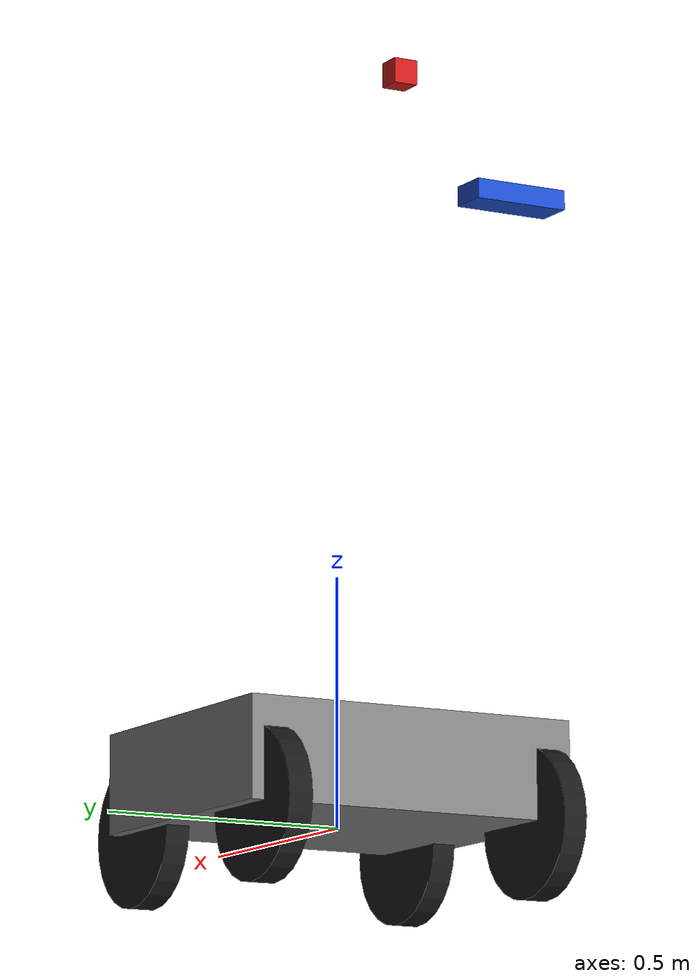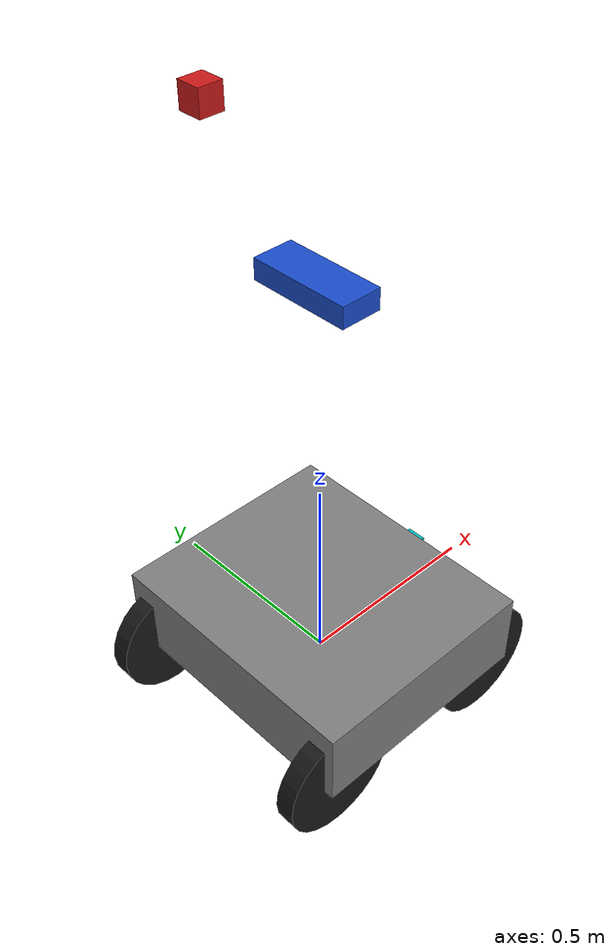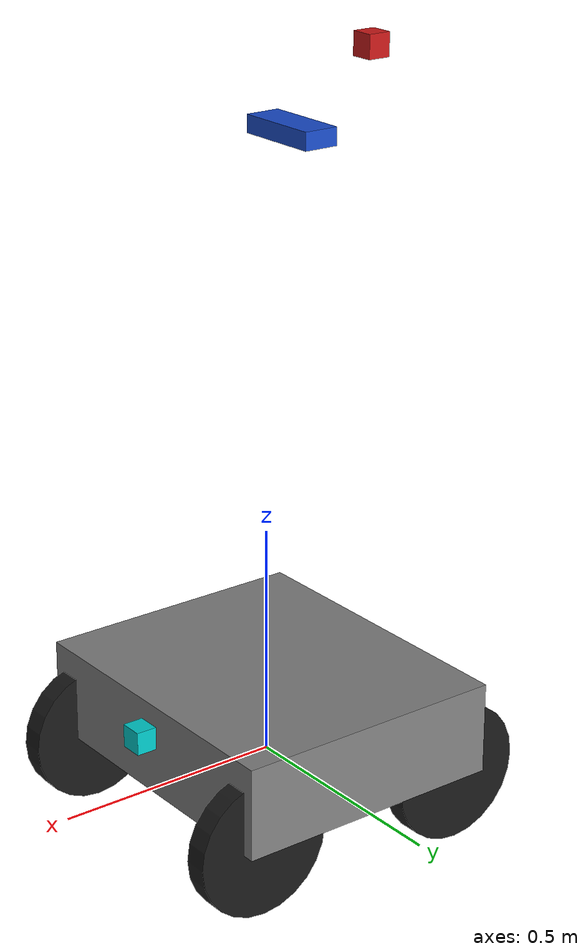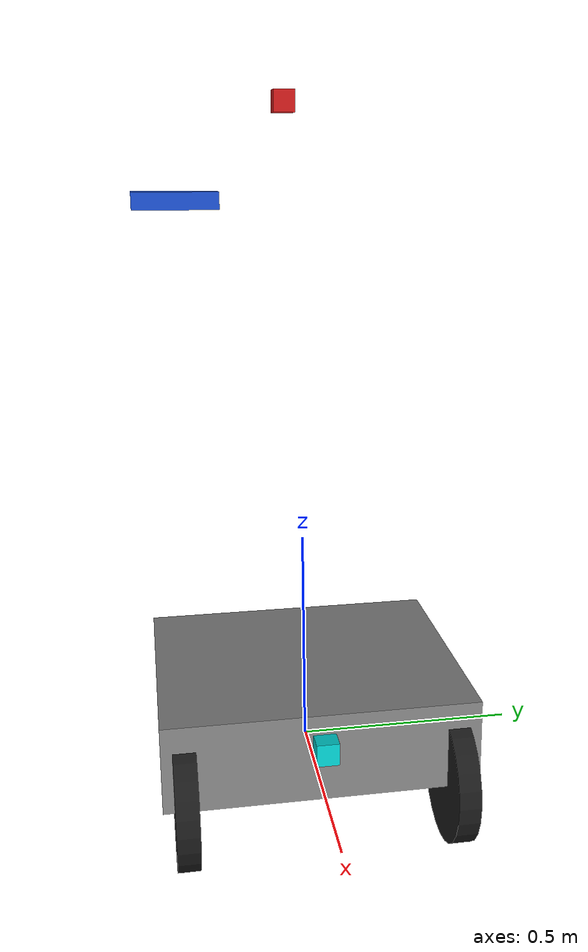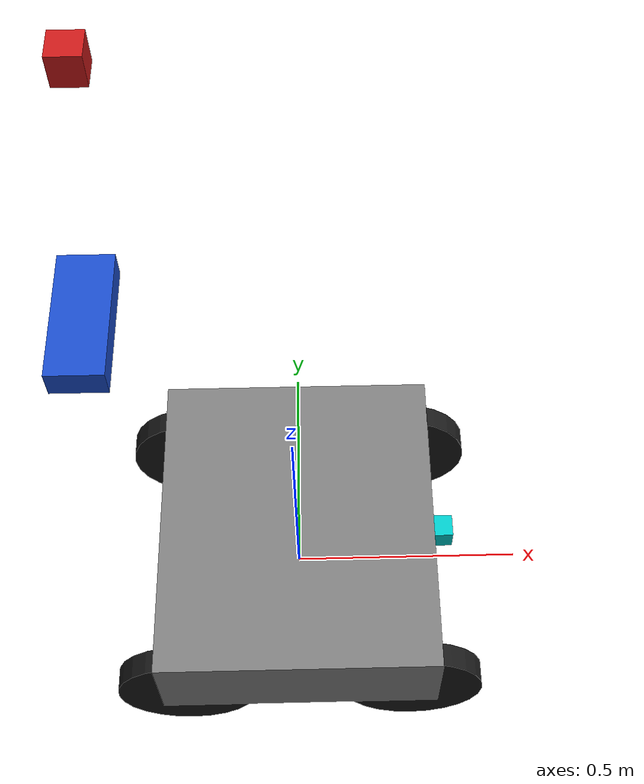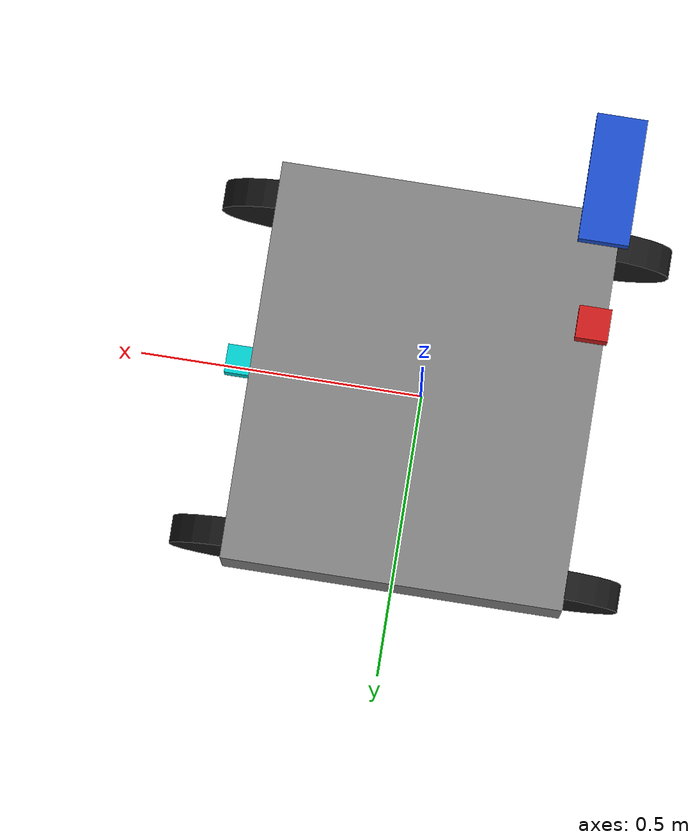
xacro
<?xml version="1.0"?>
<robot name="wheelchair" xmlns:xacro="http://www.ros.org/wiki/xacro">

  <!-- base_link：轮椅座椅（方块表示） -->
  <link name="base_link">
    <visual>
      <origin xyz="0 0 0.1" rpy="0 0 0"/>
      <geometry>
        <box size="0.6 0.7 0.2"/>
      </geometry>
      <material name="gray">
        <color rgba="0.5 0.5 0.5 1.0"/>
      </material>
    </visual>
  </link>

  <!-- 4 个轮子（小圆柱，仅视觉） -->
  <link name="wheel_fl_link">
    <visual>
      <origin xyz="0 0 0" rpy="1.5708 0 0"/>
      <geometry><cylinder radius="0.15" length="0.05"/></geometry>
      <material name="black"><color rgba="0.1 0.1 0.1 1.0"/></material>
    </visual>
  </link>
  <joint name="wheel_fl_joint" type="fixed">
    <parent link="base_link"/>
    <child link="wheel_fl_link"/>
    <origin xyz="0.25 -0.30 0.0" rpy="0 0 0"/>
  </joint>

  <link name="wheel_fr_link">
    <visual>
      <origin xyz="0 0 0" rpy="1.5708 0 0"/>
      <geometry><cylinder radius="0.15" length="0.05"/></geometry>
      <material name="black"><color rgba="0.1 0.1 0.1 1.0"/></material>
    </visual>
  </link>
  <joint name="wheel_fr_joint" type="fixed">
    <parent link="base_link"/>
    <child link="wheel_fr_link"/>
    <origin xyz="0.25 0.30 0.0" rpy="0 0 0"/>
  </joint>

  <link name="wheel_bl_link">
    <visual>
      <origin xyz="0 0 0" rpy="1.5708 0 0"/>
      <geometry><cylinder radius="0.15" length="0.05"/></geometry>
      <material name="black"><color rgba="0.1 0.1 0.1 1.0"/></material>
    </visual>
  </link>
  <joint name="wheel_bl_joint" type="fixed">
    <parent link="base_link"/>
    <child link="wheel_bl_link"/>
    <origin xyz="-0.25 -0.30 0.0" rpy="0 0 0"/>
  </joint>

  <link name="wheel_br_link">
    <visual>
      <origin xyz="0 0 0" rpy="1.5708 0 0"/>
      <geometry><cylinder radius="0.15" length="0.05"/></geometry>
      <material name="black"><color rgba="0.1 0.1 0.1 1.0"/></material>
    </visual>
  </link>
  <joint name="wheel_br_joint" type="fixed">
    <parent link="base_link"/>
    <child link="wheel_br_link"/>
    <origin xyz="-0.25 0.30 0.0" rpy="0 0 0"/>
  </joint>

  <!-- N10P link：后方高位水平扫描雷达 -->
  <link name="n10p_link">
    <visual>
      <geometry><box size="0.05 0.05 0.05"/></geometry>
      <material name="red"><color rgba="0.8 0.1 0.1 1.0"/></material>
    </visual>
  </link>
  <joint name="n10p_joint" type="fixed">
    <parent link="base_link"/>
    <child link="n10p_link"/>
    <origin xyz="-0.255 0 1.47" rpy="0 0 0"/>
  </joint>

  <!-- LD14P link：前方低位水平扫描雷达（扫描路沿） -->
  <link name="ld14p_link">
    <visual>
      <geometry><box size="0.05 0.05 0.05"/></geometry>
      <material name="cyan"><color rgba="0.0 0.8 0.8 1.0"/></material>
    </visual>
  </link>
  <joint name="ld14p_joint" type="fixed">
    <parent link="base_link"/>
    <child link="ld14p_link"/>
    <origin xyz="0.32 0 0.13" rpy="0 0 0"/>
  </joint>

  <!-- Gemini 335L link：右后方高位深度相机 -->
  <link name="gemini_link">
    <visual>
      <geometry><box size="0.08 0.20 0.04"/></geometry>
      <material name="blue"><color rgba="0.1 0.3 0.8 1.0"/></material>
    </visual>
  </link>
  <joint name="gemini_joint" type="fixed">
    <parent link="base_link"/>
    <child link="gemini_link"/>
    <origin xyz="-0.255 -0.255 1.25" rpy="0 0 0"/>
  </joint>

  <!-- Gemini 光学坐标系:z 朝前(深度图标准 REP 103) -->
  <joint name="gemini_optical_joint" type="fixed">
    <parent link="gemini_link"/>
    <child link="gemini_link_optical"/>
    <origin xyz="0 0 0" rpy="-1.5708 0 0"/>
    <!-- rpy=-π/2 around x:base_link 的 z(上)→光学系 y(下),x(前)→光学系 z(前) -->
  </joint>
  <link name="gemini_link_optical"/>

</robot>
